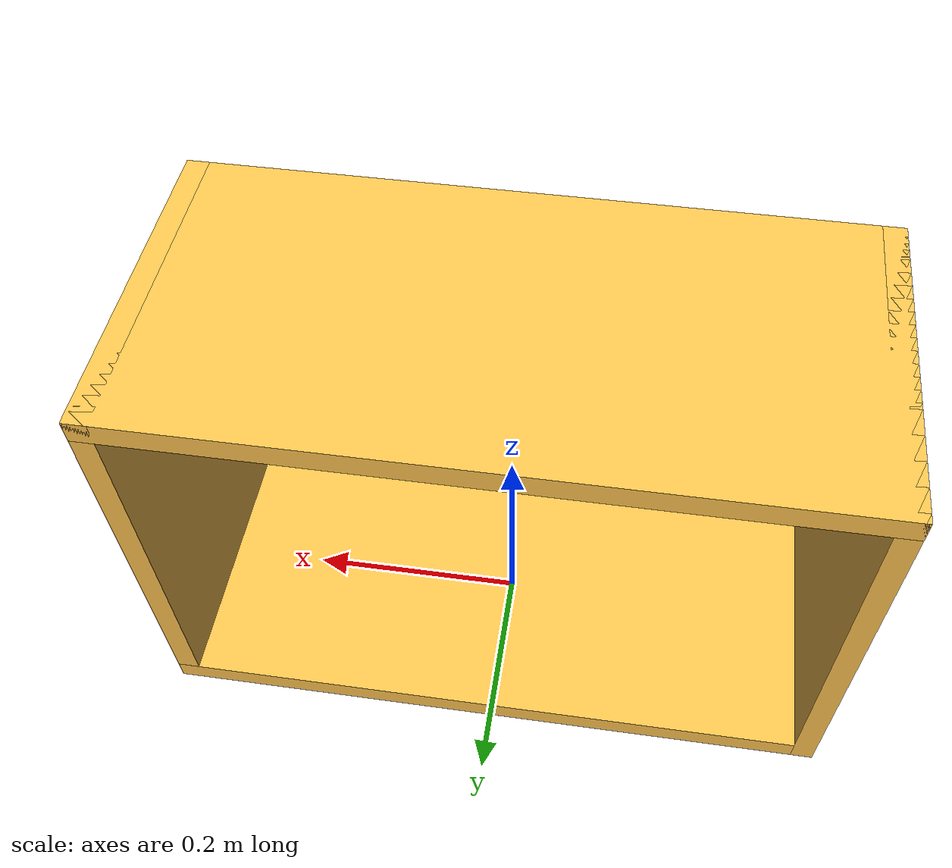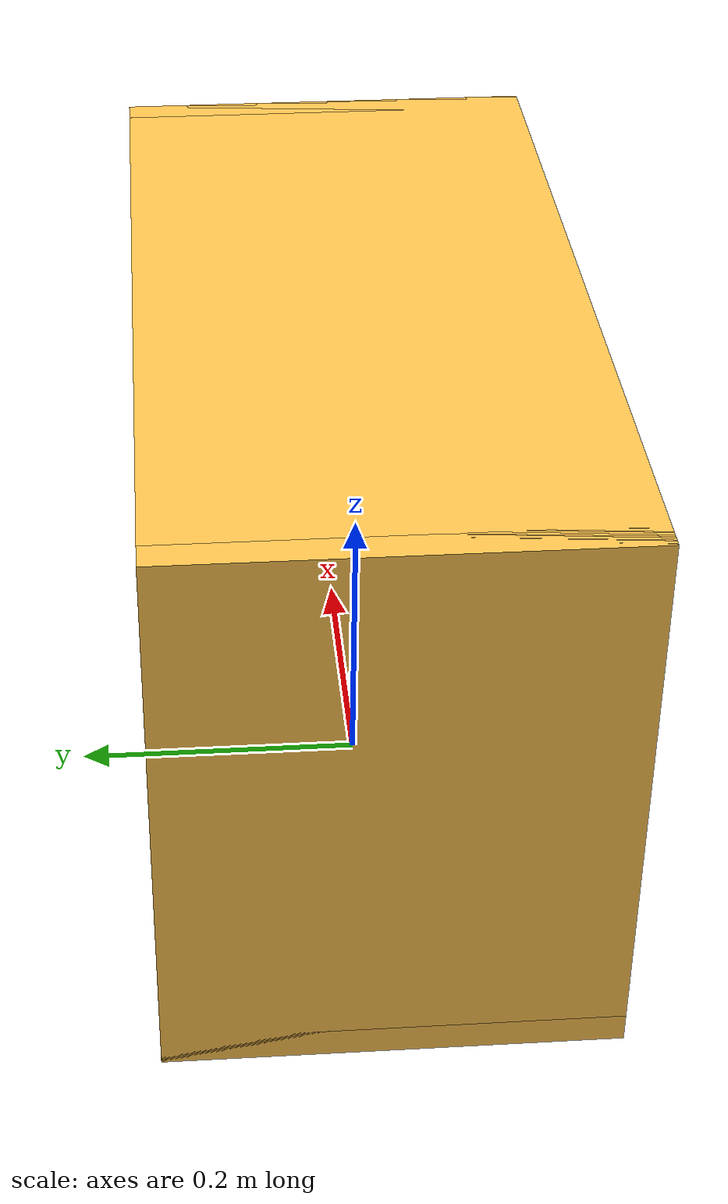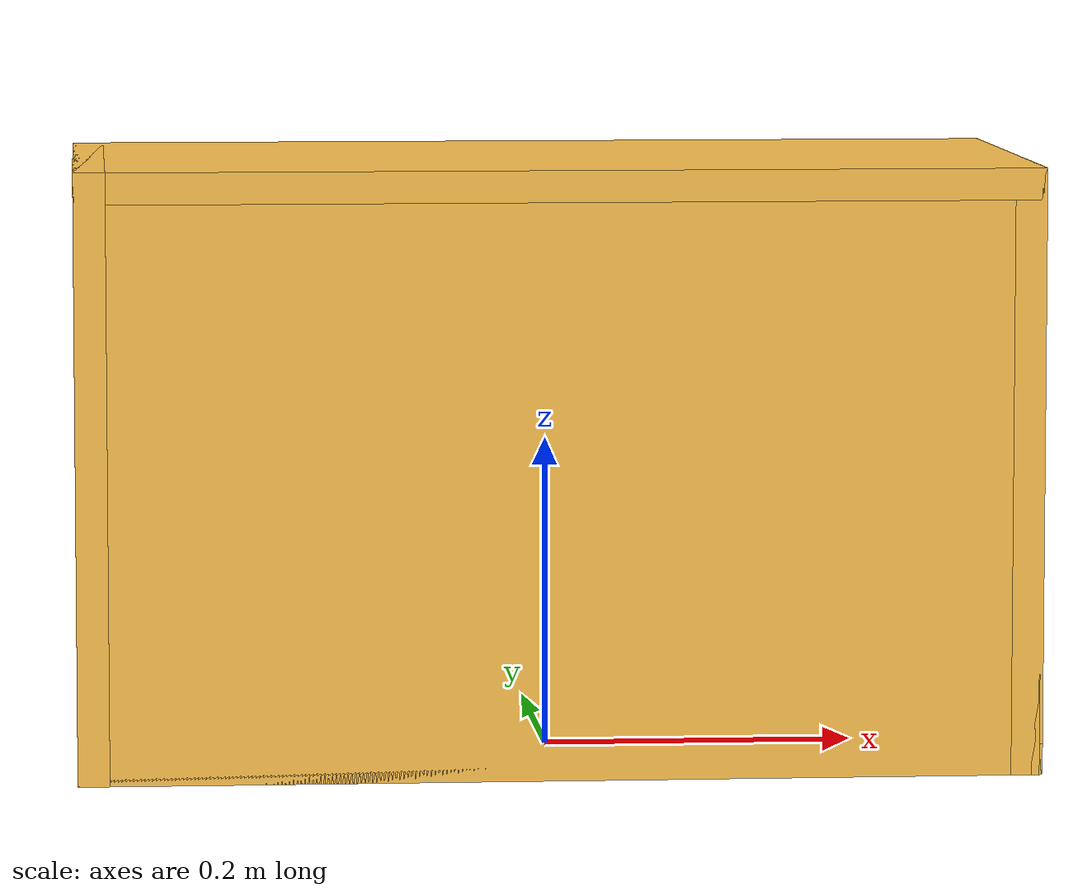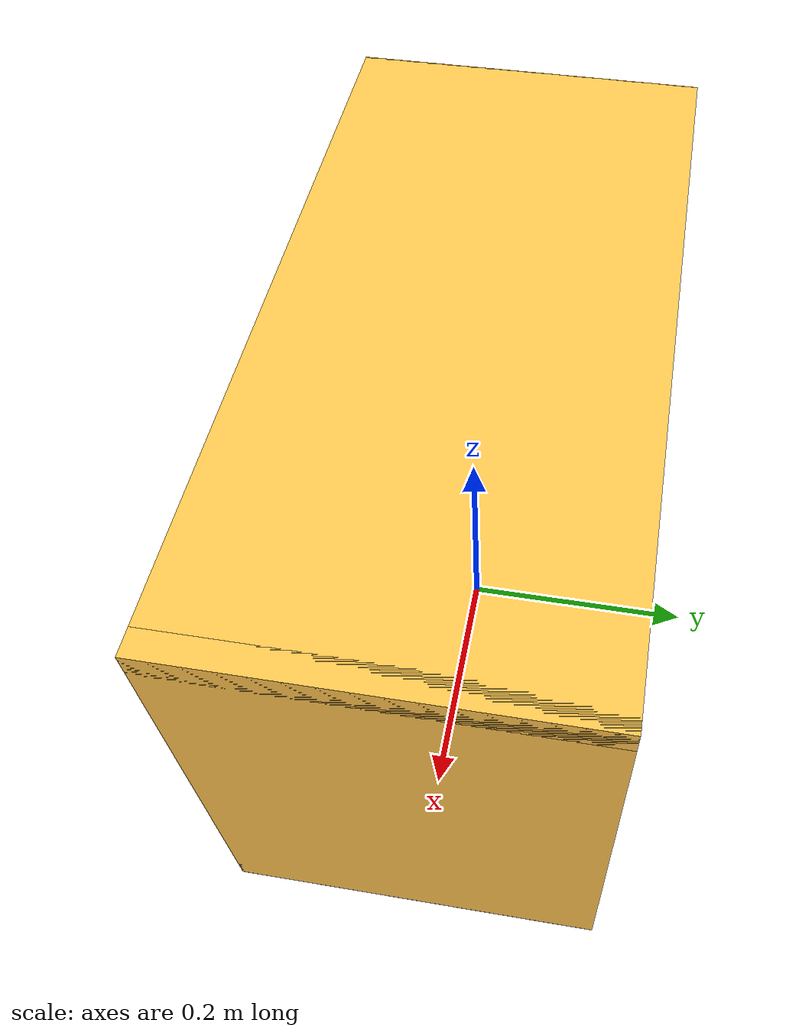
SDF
<?xml version='1.0'?>
<sdf version='1.6'>
  <model name='Wall_Cabinet_24x15M'>
    <link name='Wall_41'>
	<pose frame=''>0 0 0.01 0 -0 0</pose>
	<inertial>
	  <mass>1.4983</mass>
	   <inertia>
	     <ixx>0.0110</ixx>
	     <iyy>0.0571</iyy>
	     <izz>0.0462</izz>
    	     <ixy>0</ixy>
	     <ixz>0</ixz>
	     <iyz>0</iyz>
	   </inertia>
	</inertial>
      <collision name='Wall_41_Collision'>
        <geometry>
          <box>
            <size>0.608 0.296 0.02 </size>
          </box>
        </geometry>

      </collision>
      <visual name='Wall_41_Visual'>

        <geometry>
          <box>
            <size>0.608 0.296 0.02</size>
          </box>
        </geometry>
       <material>
          <script>
            <uri>file://media/materials/scripts/gazebo.material</uri>
            <name>Gazebo/Grey</name>
          </script>
          <ambient>1 0.764706 0.305882 1</ambient>
        </material>
      </visual>
      <pose frame=''>0.000184 0.181953 0 0 -0 0</pose>
    </link>

     <joint type="fixed" name="41_43">
      <pose frame=''>-0.304 0 0 0 0 0</pose>
         <parent>Wall_43</parent>
  	 <child>Wall_41</child>
	 <axis>
	   <xyz>0 0 1</xyz>
	 </axis>
       </joint>
   <joint type="fixed" name="41_45">
          <pose frame=''>0.304 0 0 0 0 0</pose>
         <parent>Wall_45</parent>
  	 <child>Wall_41</child>
	 <axis>
	   <xyz>0 0 1</xyz>
	 </axis>
       </joint>

   <joint type="fixed" name="41_49">
      <pose frame=''>0 -0.148 0 0 0 0</pose>
         <parent>Wall_49</parent>
  	 <child>Wall_41</child>
	 <axis>
	   <xyz>0 0 1</xyz>
	 </axis>
       </joint>

    <link name='Wall_43'>
     <pose frame=''>-0.294 0 0.192 0 0 0</pose>
	<inertial>
	  <mass>0.9463</mass>
	   <inertia>
	     <ixx>0.0069</ixx>
	     <iyy>0.0185</iyy>
	     <izz>0.0117</izz>
    	     <ixy>0</ixy>
	     <ixz>0</ixz>
	     <iyz>0</iyz>
	   </inertia>
	</inertial>
      <collision name='Wall_43_Collision'>
        <geometry>
          <box>
            <size> 0.02 0.296 0.384</size>
          </box>
        </geometry>
       </collision>
      <visual name='Wall_43_Visual'>
         <geometry>
          <box>
            <size>0.02 0.296 0.384</size>
          </box>
        </geometry>
        <material>
          <script>
            <uri>file://media/materials/scripts/gazebo.material</uri>
            <name>Gazebo/Grey</name>
          </script>
          <ambient>1 0.764706 0.305882 1</ambient>
        </material>
      </visual>
     </link>

    <link name='Wall_45'>
       <pose frame=''>0.294 0 0.192 0 0 0</pose>
	<inertial>
	  <mass>0.9463</mass>
	   <inertia>
	     <ixx>0.0069</ixx>
	     <iyy>0.0185</iyy>
	     <izz>0.0117</izz>
    	     <ixy>0</ixy>
	     <ixz>0</ixz>
	     <iyz>0</iyz>
	   </inertia>
	</inertial>
      <collision name='Wall_45_Collision'>
        <geometry>
          <box>
            <size> 0.02 0.296 0.384</size>
          </box>
        </geometry>
      </collision>
      <visual name='Wall_45_Visual'>
        <geometry>
          <box>
            <size>0.02 0.296 0.384</size>
          </box>
        </geometry>
     <material>
          <script>
            <uri>file://media/materials/scripts/gazebo.material</uri>
            <name>Gazebo/Grey</name>
          </script>
          <ambient>1 0.764706 0.305882 1</ambient>
        </material>
      </visual>
     </link>

    <link name='Wall_47'>
	<pose frame=''>0 0 0.374 0 0 0</pose>
	<inertial>
	  <mass>1.4983</mass>
	   <inertia>
	     <ixx>0.0110</ixx>
	     <iyy>0.0571</iyy>
	     <izz>0.0462</izz>
    	     <ixy>0</ixy>
	     <ixz>0</ixz>
	     <iyz>0</iyz>
	   </inertia>
	</inertial>
      <collision name='Wall_47_Collision'>
        <geometry>
          <box>
            <size>0.608 0.296 0.02 </size>
          </box>
        </geometry>
        </collision>
      <visual name='Wall_47_Visual'>
         <geometry>
          <box>
            <size>0.608 0.296 0.02</size>
          </box>
        </geometry>
       <material>
          <script>
            <uri>file://media/materials/scripts/gazebo.material</uri>
            <name>Gazebo/Grey</name>
          </script>
          <ambient>1 0.764706 0.305882 1</ambient>
        </material>
      </visual>

    </link>
     <joint type="fixed" name="47_43">
      <pose frame=''>-0.304 0 0 0 0 0</pose>
         <parent>Wall_43</parent>
  	 <child>Wall_47</child>
	 <axis>
	   <xyz>0 0 1</xyz>
	 </axis>
       </joint>
   <joint type="fixed" name="47_45">
          <pose frame=''>0.304 0 0 0 0 0</pose>
         <parent>Wall_45</parent>
  	 <child>Wall_47</child>
	 <axis>
	   <xyz>0 0 1</xyz>
	 </axis>
       </joint>

   <joint type="fixed" name="47_49">
      <pose frame=''>0  -0.148 0 0 0 0</pose>
         <parent>Wall_49</parent>
  	 <child>Wall_47</child>
	 <axis>
	   <xyz>0 0 1</xyz>
	 </axis>
       </joint>

    <link name='Wall_49'>
 	<pose frame=''>0 -0.138 0.190 0 0 0</pose>
	<inertial>
	  <mass>1.9108</mass>
	   <inertia>
	     <ixx>0.0231</ixx>
	     <iyy>0.0582</iyy>
	     <izz>0.0811</izz>
    	     <ixy>0</ixy>
	     <ixz>0</ixz>
	     <iyz>0</iyz>
	   </inertia>
	</inertial>
      <collision name='Wall_49_Collision'>
        <geometry>
          <box>
            <size>0.604 0.02 0.38</size>
          </box>
        </geometry>
      </collision>
      <visual name='Wall_49_Visual'>
        <geometry>
          <box>
            <size>0.604 0.02 0.38</size>
          </box>
        </geometry>
        <material>
          <script>
            <uri>file://media/materials/scripts/gazebo.material</uri>
            <name>Gazebo/Grey</name>
          </script>
          <ambient>1 0.764706 0.305882 1</ambient>
        </material>
      </visual>
    </link>

   <joint type="fixed" name="49_43">
          <pose frame=''> -0.302 0 0  0 0 0</pose>
         <parent>Wall_41</parent>
  	 <child>Wall_49</child>
	 <axis>
	   <xyz>0 1 0</xyz>
	 </axis>
       </joint>

   <joint type="fixed" name="49_45">
      <pose frame=''> 0.302 0 0  0 0 0</pose>
         <parent>Wall_45</parent>
  	 <child>Wall_49</child>
	 <axis>
	   <xyz>0 1 0</xyz>
	 </axis>
       </joint>

    <static>1</static>
  </model>
</sdf>
